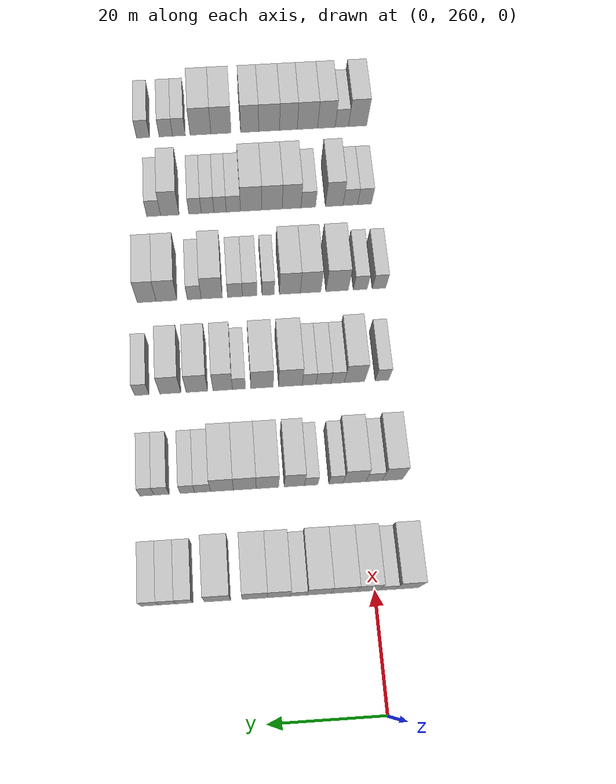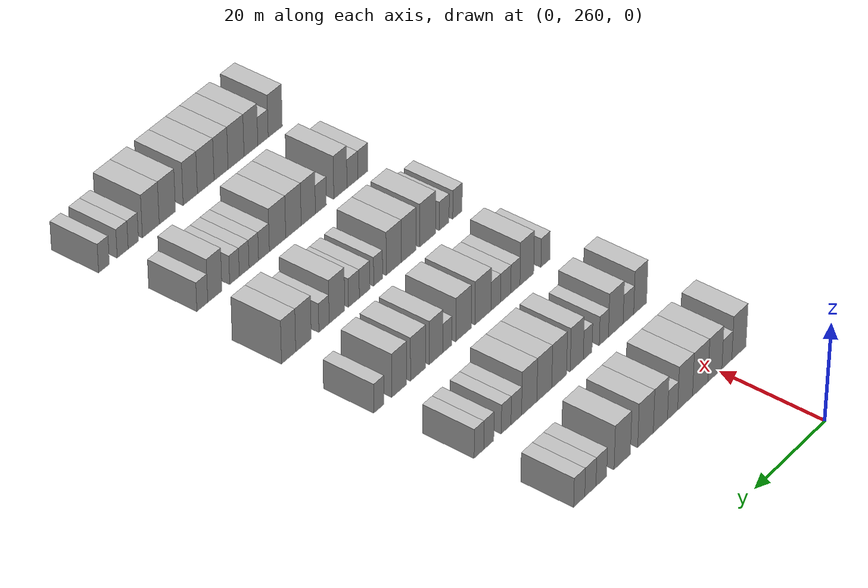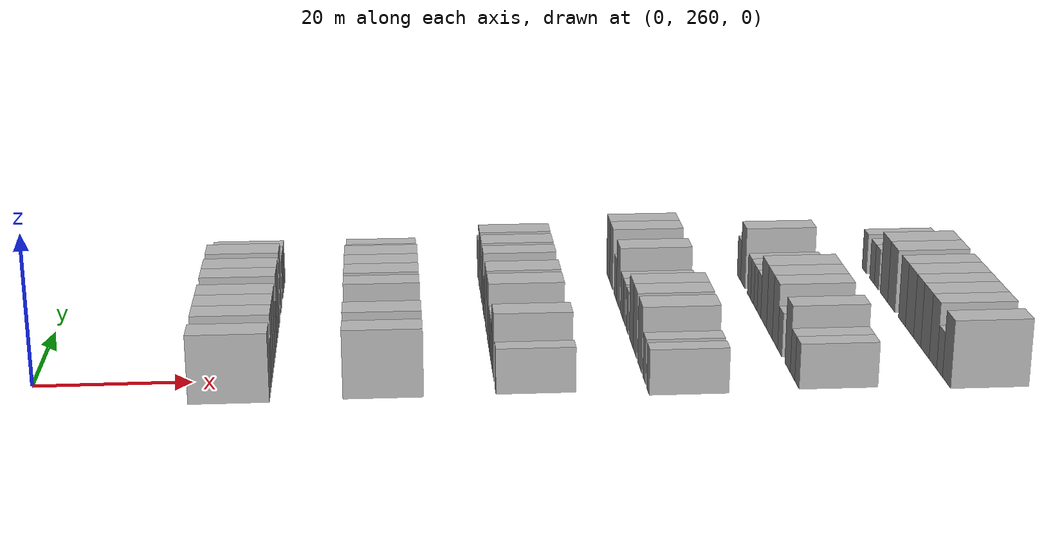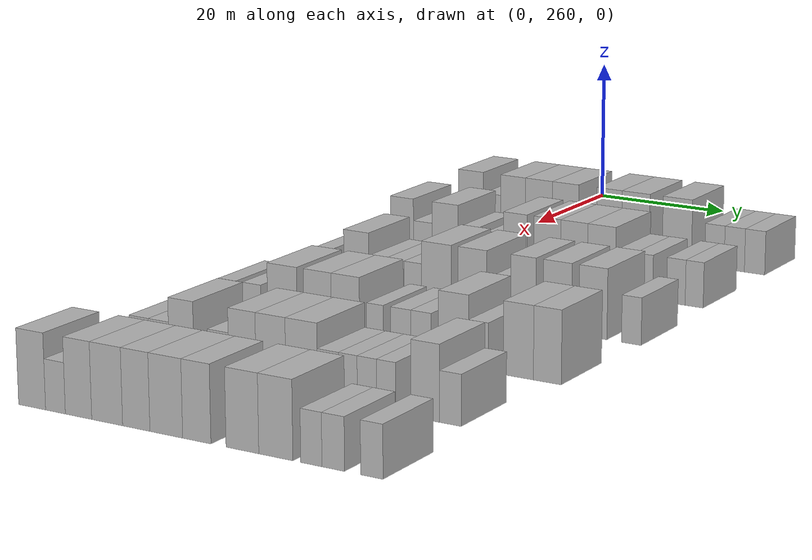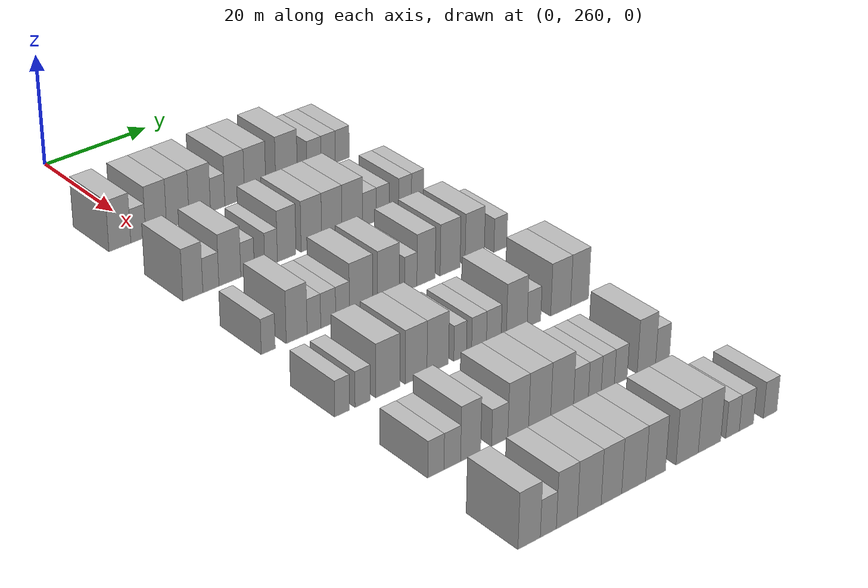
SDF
<sdf version="1.6">
 <world name="default">
  <model name="building_153">
   <static>1</static>
   <pose>25.0000 254.4689 0 0.000000 0.000000 0.000000</pose>
   <link name="link">
    <pose>0 0 4.50 0 0 0</pose>
    <collision name="collision"><geometry><box><size>10.0000 4.0778 9.0000</size></box></geometry></collision>
    <visual name="visual">
     <cast_shadows>0</cast_shadows>
     <geometry><box><size>10.0000 4.0778 9.0000</size></box></geometry>
     <material>
      <script>
       <uri>model://HANNAS_wall/materials/scripts</uri>
       <uri>model://HANNAS_wall/materials/textures</uri>
       <name>vrc/HANNAS_wall</name>
      </script>
     </material>
    </visual>
   </link>
  </model>
  <model name="building_154">
   <static>1</static>
   <pose>25.0000 257.9187 0 0.000000 0.000000 0.000000</pose>
   <link name="link">
    <pose>0 0 3.00 0 0 0</pose>
    <collision name="collision"><geometry><box><size>10.0000 2.8217 6.0000</size></box></geometry></collision>
    <visual name="visual">
     <cast_shadows>0</cast_shadows>
     <geometry><box><size>10.0000 2.8217 6.0000</size></box></geometry>
     <material>
      <script>
       <uri>model://HANNAS_wall/materials/scripts</uri>
       <uri>model://HANNAS_wall/materials/textures</uri>
       <name>vrc/HANNAS_wall</name>
      </script>
     </material>
    </visual>
   </link>
  </model>
  <model name="building_155">
   <static>1</static>
   <pose>25.0000 261.3201 0 0.000000 0.000000 0.000000</pose>
   <link name="link">
    <pose>0 0 4.50 0 0 0</pose>
    <collision name="collision"><geometry><box><size>10.0000 3.9810 9.0000</size></box></geometry></collision>
    <visual name="visual">
     <cast_shadows>0</cast_shadows>
     <geometry><box><size>10.0000 3.9810 9.0000</size></box></geometry>
     <material>
      <script>
       <uri>model://HANNAS_wall/materials/scripts</uri>
       <uri>model://HANNAS_wall/materials/textures</uri>
       <name>vrc/HANNAS_wall</name>
      </script>
     </material>
    </visual>
   </link>
  </model>
  <model name="building_156">
   <static>1</static>
   <pose>25.0000 265.4725 0 0.000000 0.000000 0.000000</pose>
   <link name="link">
    <pose>0 0 4.50 0 0 0</pose>
    <collision name="collision"><geometry><box><size>10.0000 4.3239 9.0000</size></box></geometry></collision>
    <visual name="visual">
     <cast_shadows>0</cast_shadows>
     <geometry><box><size>10.0000 4.3239 9.0000</size></box></geometry>
     <material>
      <script>
       <uri>model://HANNAS_wall/materials/scripts</uri>
       <uri>model://HANNAS_wall/materials/textures</uri>
       <name>vrc/HANNAS_wall</name>
      </script>
     </material>
    </visual>
   </link>
  </model>
  <model name="building_157">
   <static>1</static>
   <pose>25.0000 269.7164 0 0.000000 0.000000 0.000000</pose>
   <link name="link">
    <pose>0 0 4.50 0 0 0</pose>
    <collision name="collision"><geometry><box><size>10.0000 4.1637 9.0000</size></box></geometry></collision>
    <visual name="visual">
     <cast_shadows>0</cast_shadows>
     <geometry><box><size>10.0000 4.1637 9.0000</size></box></geometry>
     <material>
      <script>
       <uri>model://HANNAS_wall/materials/scripts</uri>
       <uri>model://HANNAS_wall/materials/textures</uri>
       <name>vrc/HANNAS_wall</name>
      </script>
     </material>
    </visual>
   </link>
  </model>
  <model name="building_158">
   <static>1</static>
   <pose>25.0000 273.2153 0 0.000000 0.000000 0.000000</pose>
   <link name="link">
    <pose>0 0 3.00 0 0 0</pose>
    <collision name="collision"><geometry><box><size>10.0000 2.8342 6.0000</size></box></geometry></collision>
    <visual name="visual">
     <cast_shadows>0</cast_shadows>
     <geometry><box><size>10.0000 2.8342 6.0000</size></box></geometry>
     <material>
      <script>
       <uri>model://HANNAS_wall/materials/scripts</uri>
       <uri>model://HANNAS_wall/materials/textures</uri>
       <name>vrc/HANNAS_wall</name>
      </script>
     </material>
    </visual>
   </link>
  </model>
  <model name="building_159">
   <static>1</static>
   <pose>25.0000 276.5913 0 0.000000 0.000000 0.000000</pose>
   <link name="link">
    <pose>0 0 4.50 0 0 0</pose>
    <collision name="collision"><geometry><box><size>10.0000 3.9178 9.0000</size></box></geometry></collision>
    <visual name="visual">
     <cast_shadows>0</cast_shadows>
     <geometry><box><size>10.0000 3.9178 9.0000</size></box></geometry>
     <material>
      <script>
       <uri>model://HANNAS_wall/materials/scripts</uri>
       <uri>model://HANNAS_wall/materials/textures</uri>
       <name>vrc/HANNAS_wall</name>
      </script>
     </material>
    </visual>
   </link>
  </model>
  <model name="building_160">
   <static>1</static>
   <pose>25.0000 280.6914 0 0.000000 0.000000 0.000000</pose>
   <link name="link">
    <pose>0 0 4.50 0 0 0</pose>
    <collision name="collision"><geometry><box><size>10.0000 4.2824 9.0000</size></box></geometry></collision>
    <visual name="visual">
     <cast_shadows>0</cast_shadows>
     <geometry><box><size>10.0000 4.2824 9.0000</size></box></geometry>
     <material>
      <script>
       <uri>model://HANNAS_wall/materials/scripts</uri>
       <uri>model://HANNAS_wall/materials/textures</uri>
       <name>vrc/HANNAS_wall</name>
      </script>
     </material>
    </visual>
   </link>
  </model>
  <model name="building_161">
   <static>1</static>
   <pose>25.0000 287.0463 0 0.000000 0.000000 0.000000</pose>
   <link name="link">
    <pose>0 0 4.50 0 0 0</pose>
    <collision name="collision"><geometry><box><size>10.0000 4.4274 9.0000</size></box></geometry></collision>
    <visual name="visual">
     <cast_shadows>0</cast_shadows>
     <geometry><box><size>10.0000 4.4274 9.0000</size></box></geometry>
     <material>
      <script>
       <uri>model://HANNAS_wall/materials/scripts</uri>
       <uri>model://HANNAS_wall/materials/textures</uri>
       <name>vrc/HANNAS_wall</name>
      </script>
     </material>
    </visual>
   </link>
  </model>
  <model name="building_162">
   <static>1</static>
   <pose>25.0000 292.7095 0 0.000000 0.000000 0.000000</pose>
   <link name="link">
    <pose>0 0 3.00 0 0 0</pose>
    <collision name="collision"><geometry><box><size>10.0000 2.8991 6.0000</size></box></geometry></collision>
    <visual name="visual">
     <cast_shadows>0</cast_shadows>
     <geometry><box><size>10.0000 2.8991 6.0000</size></box></geometry>
     <material>
      <script>
       <uri>model://HANNAS_wall/materials/scripts</uri>
       <uri>model://HANNAS_wall/materials/textures</uri>
       <name>vrc/HANNAS_wall</name>
      </script>
     </material>
    </visual>
   </link>
  </model>
  <model name="building_163">
   <static>1</static>
   <pose>25.0000 295.6560 0 0.000000 0.000000 0.000000</pose>
   <link name="link">
    <pose>0 0 3.00 0 0 0</pose>
    <collision name="collision"><geometry><box><size>10.0000 2.9939 6.0000</size></box></geometry></collision>
    <visual name="visual">
     <cast_shadows>0</cast_shadows>
     <geometry><box><size>10.0000 2.9939 6.0000</size></box></geometry>
     <material>
      <script>
       <uri>model://HANNAS_wall/materials/scripts</uri>
       <uri>model://HANNAS_wall/materials/textures</uri>
       <name>vrc/HANNAS_wall</name>
      </script>
     </material>
    </visual>
   </link>
  </model>
  <model name="building_164">
   <static>1</static>
   <pose>25.0000 298.6412 0 0.000000 0.000000 0.000000</pose>
   <link name="link">
    <pose>0 0 3.00 0 0 0</pose>
    <collision name="collision"><geometry><box><size>10.0000 2.9764 6.0000</size></box></geometry></collision>
    <visual name="visual">
     <cast_shadows>0</cast_shadows>
     <geometry><box><size>10.0000 2.9764 6.0000</size></box></geometry>
     <material>
      <script>
       <uri>model://HANNAS_wall/materials/scripts</uri>
       <uri>model://HANNAS_wall/materials/textures</uri>
       <name>vrc/HANNAS_wall</name>
      </script>
     </material>
    </visual>
   </link>
  </model>
  <model name="building_320">
   <static>1</static>
   <pose>44.0000 254.7056 0 0.000000 0.000000 0.000000</pose>
   <link name="link">
    <pose>0 0 4.50 0 0 0</pose>
    <collision name="collision"><geometry><box><size>10.0000 3.6808 9.0000</size></box></geometry></collision>
    <visual name="visual">
     <cast_shadows>0</cast_shadows>
     <geometry><box><size>10.0000 3.6808 9.0000</size></box></geometry>
     <material>
      <script>
       <uri>model://HANNAS_wall/materials/scripts</uri>
       <uri>model://HANNAS_wall/materials/textures</uri>
       <name>vrc/HANNAS_wall</name>
      </script>
     </material>
    </visual>
   </link>
  </model>
  <model name="building_321">
   <static>1</static>
   <pose>44.0000 258.0361 0 0.000000 0.000000 0.000000</pose>
   <link name="link">
    <pose>0 0 3.00 0 0 0</pose>
    <collision name="collision"><geometry><box><size>10.0000 2.9803 6.0000</size></box></geometry></collision>
    <visual name="visual">
     <cast_shadows>0</cast_shadows>
     <geometry><box><size>10.0000 2.9803 6.0000</size></box></geometry>
     <material>
      <script>
       <uri>model://HANNAS_wall/materials/scripts</uri>
       <uri>model://HANNAS_wall/materials/textures</uri>
       <name>vrc/HANNAS_wall</name>
      </script>
     </material>
    </visual>
   </link>
  </model>
  <model name="building_322">
   <static>1</static>
   <pose>44.0000 261.5831 0 0.000000 0.000000 0.000000</pose>
   <link name="link">
    <pose>0 0 4.50 0 0 0</pose>
    <collision name="collision"><geometry><box><size>10.0000 4.1137 9.0000</size></box></geometry></collision>
    <visual name="visual">
     <cast_shadows>0</cast_shadows>
     <geometry><box><size>10.0000 4.1137 9.0000</size></box></geometry>
     <material>
      <script>
       <uri>model://HANNAS_wall/materials/scripts</uri>
       <uri>model://HANNAS_wall/materials/textures</uri>
       <name>vrc/HANNAS_wall</name>
      </script>
     </material>
    </visual>
   </link>
  </model>
  <model name="building_323">
   <static>1</static>
   <pose>44.0000 264.9212 0 0.000000 0.000000 0.000000</pose>
   <link name="link">
    <pose>0 0 3.00 0 0 0</pose>
    <collision name="collision"><geometry><box><size>10.0000 2.5624 6.0000</size></box></geometry></collision>
    <visual name="visual">
     <cast_shadows>0</cast_shadows>
     <geometry><box><size>10.0000 2.5624 6.0000</size></box></geometry>
     <material>
      <script>
       <uri>model://HANNAS_wall/materials/scripts</uri>
       <uri>model://HANNAS_wall/materials/textures</uri>
       <name>vrc/HANNAS_wall</name>
      </script>
     </material>
    </visual>
   </link>
  </model>
  <model name="building_324">
   <static>1</static>
   <pose>44.0000 269.4164 0 0.000000 0.000000 0.000000</pose>
   <link name="link">
    <pose>0 0 3.00 0 0 0</pose>
    <collision name="collision"><geometry><box><size>10.0000 2.4282 6.0000</size></box></geometry></collision>
    <visual name="visual">
     <cast_shadows>0</cast_shadows>
     <geometry><box><size>10.0000 2.4282 6.0000</size></box></geometry>
     <material>
      <script>
       <uri>model://HANNAS_wall/materials/scripts</uri>
       <uri>model://HANNAS_wall/materials/textures</uri>
       <name>vrc/HANNAS_wall</name>
      </script>
     </material>
    </visual>
   </link>
  </model>
  <model name="building_325">
   <static>1</static>
   <pose>44.0000 272.4348 0 0.000000 0.000000 0.000000</pose>
   <link name="link">
    <pose>0 0 4.50 0 0 0</pose>
    <collision name="collision"><geometry><box><size>10.0000 3.6086 9.0000</size></box></geometry></collision>
    <visual name="visual">
     <cast_shadows>0</cast_shadows>
     <geometry><box><size>10.0000 3.6086 9.0000</size></box></geometry>
     <material>
      <script>
       <uri>model://HANNAS_wall/materials/scripts</uri>
       <uri>model://HANNAS_wall/materials/textures</uri>
       <name>vrc/HANNAS_wall</name>
      </script>
     </material>
    </visual>
   </link>
  </model>
  <model name="building_326">
   <static>1</static>
   <pose>44.0000 277.2609 0 0.000000 0.000000 0.000000</pose>
   <link name="link">
    <pose>0 0 4.50 0 0 0</pose>
    <collision name="collision"><geometry><box><size>10.0000 4.0436 9.0000</size></box></geometry></collision>
    <visual name="visual">
     <cast_shadows>0</cast_shadows>
     <geometry><box><size>10.0000 4.0436 9.0000</size></box></geometry>
     <material>
      <script>
       <uri>model://HANNAS_wall/materials/scripts</uri>
       <uri>model://HANNAS_wall/materials/textures</uri>
       <name>vrc/HANNAS_wall</name>
      </script>
     </material>
    </visual>
   </link>
  </model>
  <model name="building_327">
   <static>1</static>
   <pose>44.0000 281.3010 0 0.000000 0.000000 0.000000</pose>
   <link name="link">
    <pose>0 0 4.50 0 0 0</pose>
    <collision name="collision"><geometry><box><size>10.0000 4.0364 9.0000</size></box></geometry></collision>
    <visual name="visual">
     <cast_shadows>0</cast_shadows>
     <geometry><box><size>10.0000 4.0364 9.0000</size></box></geometry>
     <material>
      <script>
       <uri>model://HANNAS_wall/materials/scripts</uri>
       <uri>model://HANNAS_wall/materials/textures</uri>
       <name>vrc/HANNAS_wall</name>
      </script>
     </material>
    </visual>
   </link>
  </model>
  <model name="building_328">
   <static>1</static>
   <pose>44.0000 285.3831 0 0.000000 0.000000 0.000000</pose>
   <link name="link">
    <pose>0 0 4.50 0 0 0</pose>
    <collision name="collision"><geometry><box><size>10.0000 4.1279 9.0000</size></box></geometry></collision>
    <visual name="visual">
     <cast_shadows>0</cast_shadows>
     <geometry><box><size>10.0000 4.1279 9.0000</size></box></geometry>
     <material>
      <script>
       <uri>model://HANNAS_wall/materials/scripts</uri>
       <uri>model://HANNAS_wall/materials/textures</uri>
       <name>vrc/HANNAS_wall</name>
      </script>
     </material>
    </visual>
   </link>
  </model>
  <model name="building_329">
   <static>1</static>
   <pose>44.0000 288.8710 0 0.000000 0.000000 0.000000</pose>
   <link name="link">
    <pose>0 0 3.00 0 0 0</pose>
    <collision name="collision"><geometry><box><size>10.0000 2.8478 6.0000</size></box></geometry></collision>
    <visual name="visual">
     <cast_shadows>0</cast_shadows>
     <geometry><box><size>10.0000 2.8478 6.0000</size></box></geometry>
     <material>
      <script>
       <uri>model://HANNAS_wall/materials/scripts</uri>
       <uri>model://HANNAS_wall/materials/textures</uri>
       <name>vrc/HANNAS_wall</name>
      </script>
     </material>
    </visual>
   </link>
  </model>
  <model name="building_330">
   <static>1</static>
   <pose>44.0000 291.5858 0 0.000000 0.000000 0.000000</pose>
   <link name="link">
    <pose>0 0 3.00 0 0 0</pose>
    <collision name="collision"><geometry><box><size>10.0000 2.5817 6.0000</size></box></geometry></collision>
    <visual name="visual">
     <cast_shadows>0</cast_shadows>
     <geometry><box><size>10.0000 2.5817 6.0000</size></box></geometry>
     <material>
      <script>
       <uri>model://HANNAS_wall/materials/scripts</uri>
       <uri>model://HANNAS_wall/materials/textures</uri>
       <name>vrc/HANNAS_wall</name>
      </script>
     </material>
    </visual>
   </link>
  </model>
  <model name="building_331">
   <static>1</static>
   <pose>44.0000 296.2044 0 0.000000 0.000000 0.000000</pose>
   <link name="link">
    <pose>0 0 3.00 0 0 0</pose>
    <collision name="collision"><geometry><box><size>10.0000 2.6555 6.0000</size></box></geometry></collision>
    <visual name="visual">
     <cast_shadows>0</cast_shadows>
     <geometry><box><size>10.0000 2.6555 6.0000</size></box></geometry>
     <material>
      <script>
       <uri>model://HANNAS_wall/materials/scripts</uri>
       <uri>model://HANNAS_wall/materials/textures</uri>
       <name>vrc/HANNAS_wall</name>
      </script>
     </material>
    </visual>
   </link>
  </model>
  <model name="building_332">
   <static>1</static>
   <pose>44.0000 298.8072 0 0.000000 0.000000 0.000000</pose>
   <link name="link">
    <pose>0 0 3.00 0 0 0</pose>
    <collision name="collision"><geometry><box><size>10.0000 2.5501 6.0000</size></box></geometry></collision>
    <visual name="visual">
     <cast_shadows>0</cast_shadows>
     <geometry><box><size>10.0000 2.5501 6.0000</size></box></geometry>
     <material>
      <script>
       <uri>model://HANNAS_wall/materials/scripts</uri>
       <uri>model://HANNAS_wall/materials/textures</uri>
       <name>vrc/HANNAS_wall</name>
      </script>
     </material>
    </visual>
   </link>
  </model>
  <model name="building_496">
   <static>1</static>
   <pose>63.0000 254.4241 0 0.000000 0.000000 0.000000</pose>
   <link name="link">
    <pose>0 0 3.00 0 0 0</pose>
    <collision name="collision"><geometry><box><size>10.0000 2.5324 6.0000</size></box></geometry></collision>
    <visual name="visual">
     <cast_shadows>0</cast_shadows>
     <geometry><box><size>10.0000 2.5324 6.0000</size></box></geometry>
     <material>
      <script>
       <uri>model://HANNAS_wall/materials/scripts</uri>
       <uri>model://HANNAS_wall/materials/textures</uri>
       <name>vrc/HANNAS_wall</name>
      </script>
     </material>
    </visual>
   </link>
  </model>
  <model name="building_497">
   <static>1</static>
   <pose>63.0000 259.6049 0 0.000000 0.000000 0.000000</pose>
   <link name="link">
    <pose>0 0 4.50 0 0 0</pose>
    <collision name="collision"><geometry><box><size>10.0000 3.8292 9.0000</size></box></geometry></collision>
    <visual name="visual">
     <cast_shadows>0</cast_shadows>
     <geometry><box><size>10.0000 3.8292 9.0000</size></box></geometry>
     <material>
      <script>
       <uri>model://HANNAS_wall/materials/scripts</uri>
       <uri>model://HANNAS_wall/materials/textures</uri>
       <name>vrc/HANNAS_wall</name>
      </script>
     </material>
    </visual>
   </link>
  </model>
  <model name="building_498">
   <static>1</static>
   <pose>63.0000 262.7938 0 0.000000 0.000000 0.000000</pose>
   <link name="link">
    <pose>0 0 3.00 0 0 0</pose>
    <collision name="collision"><geometry><box><size>10.0000 2.5487 6.0000</size></box></geometry></collision>
    <visual name="visual">
     <cast_shadows>0</cast_shadows>
     <geometry><box><size>10.0000 2.5487 6.0000</size></box></geometry>
     <material>
      <script>
       <uri>model://HANNAS_wall/materials/scripts</uri>
       <uri>model://HANNAS_wall/materials/textures</uri>
       <name>vrc/HANNAS_wall</name>
      </script>
     </material>
    </visual>
   </link>
  </model>
  <model name="building_499">
   <static>1</static>
   <pose>63.0000 265.4704 0 0.000000 0.000000 0.000000</pose>
   <link name="link">
    <pose>0 0 3.00 0 0 0</pose>
    <collision name="collision"><geometry><box><size>10.0000 2.8044 6.0000</size></box></geometry></collision>
    <visual name="visual">
     <cast_shadows>0</cast_shadows>
     <geometry><box><size>10.0000 2.8044 6.0000</size></box></geometry>
     <material>
      <script>
       <uri>model://HANNAS_wall/materials/scripts</uri>
       <uri>model://HANNAS_wall/materials/textures</uri>
       <name>vrc/HANNAS_wall</name>
      </script>
     </material>
    </visual>
   </link>
  </model>
  <model name="building_500">
   <static>1</static>
   <pose>63.0000 268.1704 0 0.000000 0.000000 0.000000</pose>
   <link name="link">
    <pose>0 0 3.00 0 0 0</pose>
    <collision name="collision"><geometry><box><size>10.0000 2.5957 6.0000</size></box></geometry></collision>
    <visual name="visual">
     <cast_shadows>0</cast_shadows>
     <geometry><box><size>10.0000 2.5957 6.0000</size></box></geometry>
     <material>
      <script>
       <uri>model://HANNAS_wall/materials/scripts</uri>
       <uri>model://HANNAS_wall/materials/textures</uri>
       <name>vrc/HANNAS_wall</name>
      </script>
     </material>
    </visual>
   </link>
  </model>
  <model name="building_501">
   <static>1</static>
   <pose>63.0000 271.6797 0 0.000000 0.000000 0.000000</pose>
   <link name="link">
    <pose>0 0 4.50 0 0 0</pose>
    <collision name="collision"><geometry><box><size>10.0000 4.4229 9.0000</size></box></geometry></collision>
    <visual name="visual">
     <cast_shadows>0</cast_shadows>
     <geometry><box><size>10.0000 4.4229 9.0000</size></box></geometry>
     <material>
      <script>
       <uri>model://HANNAS_wall/materials/scripts</uri>
       <uri>model://HANNAS_wall/materials/textures</uri>
       <name>vrc/HANNAS_wall</name>
      </script>
     </material>
    </visual>
   </link>
  </model>
  <model name="building_502">
   <static>1</static>
   <pose>63.0000 276.9984 0 0.000000 0.000000 0.000000</pose>
   <link name="link">
    <pose>0 0 4.50 0 0 0</pose>
    <collision name="collision"><geometry><box><size>10.0000 4.2145 9.0000</size></box></geometry></collision>
    <visual name="visual">
     <cast_shadows>0</cast_shadows>
     <geometry><box><size>10.0000 4.2145 9.0000</size></box></geometry>
     <material>
      <script>
       <uri>model://HANNAS_wall/materials/scripts</uri>
       <uri>model://HANNAS_wall/materials/textures</uri>
       <name>vrc/HANNAS_wall</name>
      </script>
     </material>
    </visual>
   </link>
  </model>
  <model name="building_503">
   <static>1</static>
   <pose>63.0000 281.3273 0 0.000000 0.000000 0.000000</pose>
   <link name="link">
    <pose>0 0 3.00 0 0 0</pose>
    <collision name="collision"><geometry><box><size>10.0000 2.4432 6.0000</size></box></geometry></collision>
    <visual name="visual">
     <cast_shadows>0</cast_shadows>
     <geometry><box><size>10.0000 2.4432 6.0000</size></box></geometry>
     <material>
      <script>
       <uri>model://HANNAS_wall/materials/scripts</uri>
       <uri>model://HANNAS_wall/materials/textures</uri>
       <name>vrc/HANNAS_wall</name>
      </script>
     </material>
    </visual>
   </link>
  </model>
  <model name="building_504">
   <static>1</static>
   <pose>63.0000 284.3616 0 0.000000 0.000000 0.000000</pose>
   <link name="link">
    <pose>0 0 4.50 0 0 0</pose>
    <collision name="collision"><geometry><box><size>10.0000 3.6255 9.0000</size></box></geometry></collision>
    <visual name="visual">
     <cast_shadows>0</cast_shadows>
     <geometry><box><size>10.0000 3.6255 9.0000</size></box></geometry>
     <material>
      <script>
       <uri>model://HANNAS_wall/materials/scripts</uri>
       <uri>model://HANNAS_wall/materials/textures</uri>
       <name>vrc/HANNAS_wall</name>
      </script>
     </material>
    </visual>
   </link>
  </model>
  <model name="building_505">
   <static>1</static>
   <pose>63.0000 289.1882 0 0.000000 0.000000 0.000000</pose>
   <link name="link">
    <pose>0 0 4.50 0 0 0</pose>
    <collision name="collision"><geometry><box><size>10.0000 4.0276 9.0000</size></box></geometry></collision>
    <visual name="visual">
     <cast_shadows>0</cast_shadows>
     <geometry><box><size>10.0000 4.0276 9.0000</size></box></geometry>
     <material>
      <script>
       <uri>model://HANNAS_wall/materials/scripts</uri>
       <uri>model://HANNAS_wall/materials/textures</uri>
       <name>vrc/HANNAS_wall</name>
      </script>
     </material>
    </visual>
   </link>
  </model>
  <model name="building_506">
   <static>1</static>
   <pose>63.0000 294.1654 0 0.000000 0.000000 0.000000</pose>
   <link name="link">
    <pose>0 0 4.50 0 0 0</pose>
    <collision name="collision"><geometry><box><size>10.0000 3.9268 9.0000</size></box></geometry></collision>
    <visual name="visual">
     <cast_shadows>0</cast_shadows>
     <geometry><box><size>10.0000 3.9268 9.0000</size></box></geometry>
     <material>
      <script>
       <uri>model://HANNAS_wall/materials/scripts</uri>
       <uri>model://HANNAS_wall/materials/textures</uri>
       <name>vrc/HANNAS_wall</name>
      </script>
     </material>
    </visual>
   </link>
  </model>
  <model name="building_507">
   <static>1</static>
   <pose>63.0000 299.4735 0 0.000000 0.000000 0.000000</pose>
   <link name="link">
    <pose>0 0 3.00 0 0 0</pose>
    <collision name="collision"><geometry><box><size>10.0000 2.6894 6.0000</size></box></geometry></collision>
    <visual name="visual">
     <cast_shadows>0</cast_shadows>
     <geometry><box><size>10.0000 2.6894 6.0000</size></box></geometry>
     <material>
      <script>
       <uri>model://HANNAS_wall/materials/scripts</uri>
       <uri>model://HANNAS_wall/materials/textures</uri>
       <name>vrc/HANNAS_wall</name>
      </script>
     </material>
    </visual>
   </link>
  </model>
  <model name="building_669">
   <static>1</static>
   <pose>82.0000 252.8216 0 0.000000 0.000000 0.000000</pose>
   <link name="link">
    <pose>0 0 3.00 0 0 0</pose>
    <collision name="collision"><geometry><box><size>10.0000 2.6441 6.0000</size></box></geometry></collision>
    <visual name="visual">
     <cast_shadows>0</cast_shadows>
     <geometry><box><size>10.0000 2.6441 6.0000</size></box></geometry>
     <material>
      <script>
       <uri>model://HANNAS_wall/materials/scripts</uri>
       <uri>model://HANNAS_wall/materials/textures</uri>
       <name>vrc/HANNAS_wall</name>
      </script>
     </material>
    </visual>
   </link>
  </model>
  <model name="building_670">
   <static>1</static>
   <pose>82.0000 256.5113 0 0.000000 0.000000 0.000000</pose>
   <link name="link">
    <pose>0 0 3.00 0 0 0</pose>
    <collision name="collision"><geometry><box><size>10.0000 2.7354 6.0000</size></box></geometry></collision>
    <visual name="visual">
     <cast_shadows>0</cast_shadows>
     <geometry><box><size>10.0000 2.7354 6.0000</size></box></geometry>
     <material>
      <script>
       <uri>model://HANNAS_wall/materials/scripts</uri>
       <uri>model://HANNAS_wall/materials/textures</uri>
       <name>vrc/HANNAS_wall</name>
      </script>
     </material>
    </visual>
   </link>
  </model>
  <model name="building_671">
   <static>1</static>
   <pose>82.0000 261.0689 0 0.000000 0.000000 0.000000</pose>
   <link name="link">
    <pose>0 0 4.50 0 0 0</pose>
    <collision name="collision"><geometry><box><size>10.0000 4.3798 9.0000</size></box></geometry></collision>
    <visual name="visual">
     <cast_shadows>0</cast_shadows>
     <geometry><box><size>10.0000 4.3798 9.0000</size></box></geometry>
     <material>
      <script>
       <uri>model://HANNAS_wall/materials/scripts</uri>
       <uri>model://HANNAS_wall/materials/textures</uri>
       <name>vrc/HANNAS_wall</name>
      </script>
     </material>
    </visual>
   </link>
  </model>
  <model name="building_672">
   <static>1</static>
   <pose>82.0000 266.2804 0 0.000000 0.000000 0.000000</pose>
   <link name="link">
    <pose>0 0 4.50 0 0 0</pose>
    <collision name="collision"><geometry><box><size>10.0000 4.0433 9.0000</size></box></geometry></collision>
    <visual name="visual">
     <cast_shadows>0</cast_shadows>
     <geometry><box><size>10.0000 4.0433 9.0000</size></box></geometry>
     <material>
      <script>
       <uri>model://HANNAS_wall/materials/scripts</uri>
       <uri>model://HANNAS_wall/materials/textures</uri>
       <name>vrc/HANNAS_wall</name>
      </script>
     </material>
    </visual>
   </link>
  </model>
  <model name="building_673">
   <static>1</static>
   <pose>82.0000 270.3343 0 0.000000 0.000000 0.000000</pose>
   <link name="link">
    <pose>0 0 4.50 0 0 0</pose>
    <collision name="collision"><geometry><box><size>10.0000 4.0644 9.0000</size></box></geometry></collision>
    <visual name="visual">
     <cast_shadows>0</cast_shadows>
     <geometry><box><size>10.0000 4.0644 9.0000</size></box></geometry>
     <material>
      <script>
       <uri>model://HANNAS_wall/materials/scripts</uri>
       <uri>model://HANNAS_wall/materials/textures</uri>
       <name>vrc/HANNAS_wall</name>
      </script>
     </material>
    </visual>
   </link>
  </model>
  <model name="building_674">
   <static>1</static>
   <pose>82.0000 274.5666 0 0.000000 0.000000 0.000000</pose>
   <link name="link">
    <pose>0 0 3.00 0 0 0</pose>
    <collision name="collision"><geometry><box><size>10.0000 2.4001 6.0000</size></box></geometry></collision>
    <visual name="visual">
     <cast_shadows>0</cast_shadows>
     <geometry><box><size>10.0000 2.4001 6.0000</size></box></geometry>
     <material>
      <script>
       <uri>model://HANNAS_wall/materials/scripts</uri>
       <uri>model://HANNAS_wall/materials/textures</uri>
       <name>vrc/HANNAS_wall</name>
      </script>
     </material>
    </visual>
   </link>
  </model>
  <model name="building_675">
   <static>1</static>
   <pose>82.0000 278.1936 0 0.000000 0.000000 0.000000</pose>
   <link name="link">
    <pose>0 0 3.00 0 0 0</pose>
    <collision name="collision"><geometry><box><size>10.0000 2.8539 6.0000</size></box></geometry></collision>
    <visual name="visual">
     <cast_shadows>0</cast_shadows>
     <geometry><box><size>10.0000 2.8539 6.0000</size></box></geometry>
     <material>
      <script>
       <uri>model://HANNAS_wall/materials/scripts</uri>
       <uri>model://HANNAS_wall/materials/textures</uri>
       <name>vrc/HANNAS_wall</name>
      </script>
     </material>
    </visual>
   </link>
  </model>
  <model name="building_676">
   <static>1</static>
   <pose>82.0000 281.0628 0 0.000000 0.000000 0.000000</pose>
   <link name="link">
    <pose>0 0 3.00 0 0 0</pose>
    <collision name="collision"><geometry><box><size>10.0000 2.8845 6.0000</size></box></geometry></collision>
    <visual name="visual">
     <cast_shadows>0</cast_shadows>
     <geometry><box><size>10.0000 2.8845 6.0000</size></box></geometry>
     <material>
      <script>
       <uri>model://HANNAS_wall/materials/scripts</uri>
       <uri>model://HANNAS_wall/materials/textures</uri>
       <name>vrc/HANNAS_wall</name>
      </script>
     </material>
    </visual>
   </link>
  </model>
  <model name="building_677">
   <static>1</static>
   <pose>82.0000 285.5686 0 0.000000 0.000000 0.000000</pose>
   <link name="link">
    <pose>0 0 4.50 0 0 0</pose>
    <collision name="collision"><geometry><box><size>10.0000 4.1270 9.0000</size></box></geometry></collision>
    <visual name="visual">
     <cast_shadows>0</cast_shadows>
     <geometry><box><size>10.0000 4.1270 9.0000</size></box></geometry>
     <material>
      <script>
       <uri>model://HANNAS_wall/materials/scripts</uri>
       <uri>model://HANNAS_wall/materials/textures</uri>
       <name>vrc/HANNAS_wall</name>
      </script>
     </material>
    </visual>
   </link>
  </model>
  <model name="building_678">
   <static>1</static>
   <pose>82.0000 288.9918 0 0.000000 0.000000 0.000000</pose>
   <link name="link">
    <pose>0 0 3.00 0 0 0</pose>
    <collision name="collision"><geometry><box><size>10.0000 2.7194 6.0000</size></box></geometry></collision>
    <visual name="visual">
     <cast_shadows>0</cast_shadows>
     <geometry><box><size>10.0000 2.7194 6.0000</size></box></geometry>
     <material>
      <script>
       <uri>model://HANNAS_wall/materials/scripts</uri>
       <uri>model://HANNAS_wall/materials/textures</uri>
       <name>vrc/HANNAS_wall</name>
      </script>
     </material>
    </visual>
   </link>
  </model>
  <model name="building_679">
   <static>1</static>
   <pose>82.0000 294.3774 0 0.000000 0.000000 0.000000</pose>
   <link name="link">
    <pose>0 0 4.50 0 0 0</pose>
    <collision name="collision"><geometry><box><size>10.0000 4.0517 9.0000</size></box></geometry></collision>
    <visual name="visual">
     <cast_shadows>0</cast_shadows>
     <geometry><box><size>10.0000 4.0517 9.0000</size></box></geometry>
     <material>
      <script>
       <uri>model://HANNAS_wall/materials/scripts</uri>
       <uri>model://HANNAS_wall/materials/textures</uri>
       <name>vrc/HANNAS_wall</name>
      </script>
     </material>
    </visual>
   </link>
  </model>
  <model name="building_680">
   <static>1</static>
   <pose>82.0000 298.2485 0 0.000000 0.000000 0.000000</pose>
   <link name="link">
    <pose>0 0 4.50 0 0 0</pose>
    <collision name="collision"><geometry><box><size>10.0000 3.6905 9.0000</size></box></geometry></collision>
    <visual name="visual">
     <cast_shadows>0</cast_shadows>
     <geometry><box><size>10.0000 3.6905 9.0000</size></box></geometry>
     <material>
      <script>
       <uri>model://HANNAS_wall/materials/scripts</uri>
       <uri>model://HANNAS_wall/materials/textures</uri>
       <name>vrc/HANNAS_wall</name>
      </script>
     </material>
    </visual>
   </link>
  </model>
  <model name="building_841">
   <static>1</static>
   <pose>101.0000 253.6285 0 0.000000 0.000000 0.000000</pose>
   <link name="link">
    <pose>0 0 3.00 0 0 0</pose>
    <collision name="collision"><geometry><box><size>10.0000 2.8488 6.0000</size></box></geometry></collision>
    <visual name="visual">
     <cast_shadows>0</cast_shadows>
     <geometry><box><size>10.0000 2.8488 6.0000</size></box></geometry>
     <material>
      <script>
       <uri>model://HANNAS_wall/materials/scripts</uri>
       <uri>model://HANNAS_wall/materials/textures</uri>
       <name>vrc/HANNAS_wall</name>
      </script>
     </material>
    </visual>
   </link>
  </model>
  <model name="building_842">
   <static>1</static>
   <pose>101.0000 256.5346 0 0.000000 0.000000 0.000000</pose>
   <link name="link">
    <pose>0 0 3.00 0 0 0</pose>
    <collision name="collision"><geometry><box><size>10.0000 2.9632 6.0000</size></box></geometry></collision>
    <visual name="visual">
     <cast_shadows>0</cast_shadows>
     <geometry><box><size>10.0000 2.9632 6.0000</size></box></geometry>
     <material>
      <script>
       <uri>model://HANNAS_wall/materials/scripts</uri>
       <uri>model://HANNAS_wall/materials/textures</uri>
       <name>vrc/HANNAS_wall</name>
      </script>
     </material>
    </visual>
   </link>
  </model>
  <model name="building_843">
   <static>1</static>
   <pose>101.0000 259.8180 0 0.000000 0.000000 0.000000</pose>
   <link name="link">
    <pose>0 0 4.50 0 0 0</pose>
    <collision name="collision"><geometry><box><size>10.0000 3.6036 9.0000</size></box></geometry></collision>
    <visual name="visual">
     <cast_shadows>0</cast_shadows>
     <geometry><box><size>10.0000 3.6036 9.0000</size></box></geometry>
     <material>
      <script>
       <uri>model://HANNAS_wall/materials/scripts</uri>
       <uri>model://HANNAS_wall/materials/textures</uri>
       <name>vrc/HANNAS_wall</name>
      </script>
     </material>
    </visual>
   </link>
  </model>
  <model name="building_844">
   <static>1</static>
   <pose>101.0000 265.1122 0 0.000000 0.000000 0.000000</pose>
   <link name="link">
    <pose>0 0 3.00 0 0 0</pose>
    <collision name="collision"><geometry><box><size>10.0000 2.9849 6.0000</size></box></geometry></collision>
    <visual name="visual">
     <cast_shadows>0</cast_shadows>
     <geometry><box><size>10.0000 2.9849 6.0000</size></box></geometry>
     <material>
      <script>
       <uri>model://HANNAS_wall/materials/scripts</uri>
       <uri>model://HANNAS_wall/materials/textures</uri>
       <name>vrc/HANNAS_wall</name>
      </script>
     </material>
    </visual>
   </link>
  </model>
  <model name="building_845">
   <static>1</static>
   <pose>101.0000 268.5261 0 0.000000 0.000000 0.000000</pose>
   <link name="link">
    <pose>0 0 4.50 0 0 0</pose>
    <collision name="collision"><geometry><box><size>10.0000 3.8428 9.0000</size></box></geometry></collision>
    <visual name="visual">
     <cast_shadows>0</cast_shadows>
     <geometry><box><size>10.0000 3.8428 9.0000</size></box></geometry>
     <material>
      <script>
       <uri>model://HANNAS_wall/materials/scripts</uri>
       <uri>model://HANNAS_wall/materials/textures</uri>
       <name>vrc/HANNAS_wall</name>
      </script>
     </material>
    </visual>
   </link>
  </model>
  <model name="building_846">
   <static>1</static>
   <pose>101.0000 272.5226 0 0.000000 0.000000 0.000000</pose>
   <link name="link">
    <pose>0 0 4.50 0 0 0</pose>
    <collision name="collision"><geometry><box><size>10.0000 4.1502 9.0000</size></box></geometry></collision>
    <visual name="visual">
     <cast_shadows>0</cast_shadows>
     <geometry><box><size>10.0000 4.1502 9.0000</size></box></geometry>
     <material>
      <script>
       <uri>model://HANNAS_wall/materials/scripts</uri>
       <uri>model://HANNAS_wall/materials/textures</uri>
       <name>vrc/HANNAS_wall</name>
      </script>
     </material>
    </visual>
   </link>
  </model>
  <model name="building_847">
   <static>1</static>
   <pose>101.0000 276.7745 0 0.000000 0.000000 0.000000</pose>
   <link name="link">
    <pose>0 0 4.50 0 0 0</pose>
    <collision name="collision"><geometry><box><size>10.0000 4.3536 9.0000</size></box></geometry></collision>
    <visual name="visual">
     <cast_shadows>0</cast_shadows>
     <geometry><box><size>10.0000 4.3536 9.0000</size></box></geometry>
     <material>
      <script>
       <uri>model://HANNAS_wall/materials/scripts</uri>
       <uri>model://HANNAS_wall/materials/textures</uri>
       <name>vrc/HANNAS_wall</name>
      </script>
     </material>
    </visual>
   </link>
  </model>
  <model name="building_848">
   <static>1</static>
   <pose>101.0000 280.3809 0 0.000000 0.000000 0.000000</pose>
   <link name="link">
    <pose>0 0 3.00 0 0 0</pose>
    <collision name="collision"><geometry><box><size>10.0000 2.8593 6.0000</size></box></geometry></collision>
    <visual name="visual">
     <cast_shadows>0</cast_shadows>
     <geometry><box><size>10.0000 2.8593 6.0000</size></box></geometry>
     <material>
      <script>
       <uri>model://HANNAS_wall/materials/scripts</uri>
       <uri>model://HANNAS_wall/materials/textures</uri>
       <name>vrc/HANNAS_wall</name>
      </script>
     </material>
    </visual>
   </link>
  </model>
  <model name="building_849">
   <static>1</static>
   <pose>101.0000 283.0658 0 0.000000 0.000000 0.000000</pose>
   <link name="link">
    <pose>0 0 3.00 0 0 0</pose>
    <collision name="collision"><geometry><box><size>10.0000 2.5104 6.0000</size></box></geometry></collision>
    <visual name="visual">
     <cast_shadows>0</cast_shadows>
     <geometry><box><size>10.0000 2.5104 6.0000</size></box></geometry>
     <material>
      <script>
       <uri>model://HANNAS_wall/materials/scripts</uri>
       <uri>model://HANNAS_wall/materials/textures</uri>
       <name>vrc/HANNAS_wall</name>
      </script>
     </material>
    </visual>
   </link>
  </model>
  <model name="building_850">
   <static>1</static>
   <pose>101.0000 285.6036 0 0.000000 0.000000 0.000000</pose>
   <link name="link">
    <pose>0 0 3.00 0 0 0</pose>
    <collision name="collision"><geometry><box><size>10.0000 2.5653 6.0000</size></box></geometry></collision>
    <visual name="visual">
     <cast_shadows>0</cast_shadows>
     <geometry><box><size>10.0000 2.5653 6.0000</size></box></geometry>
     <material>
      <script>
       <uri>model://HANNAS_wall/materials/scripts</uri>
       <uri>model://HANNAS_wall/materials/textures</uri>
       <name>vrc/HANNAS_wall</name>
      </script>
     </material>
    </visual>
   </link>
  </model>
  <model name="building_851">
   <static>1</static>
   <pose>101.0000 288.1473 0 0.000000 0.000000 0.000000</pose>
   <link name="link">
    <pose>0 0 3.00 0 0 0</pose>
    <collision name="collision"><geometry><box><size>10.0000 2.5221 6.0000</size></box></geometry></collision>
    <visual name="visual">
     <cast_shadows>0</cast_shadows>
     <geometry><box><size>10.0000 2.5221 6.0000</size></box></geometry>
     <material>
      <script>
       <uri>model://HANNAS_wall/materials/scripts</uri>
       <uri>model://HANNAS_wall/materials/textures</uri>
       <name>vrc/HANNAS_wall</name>
      </script>
     </material>
    </visual>
   </link>
  </model>
  <model name="building_852">
   <static>1</static>
   <pose>101.0000 293.2612 0 0.000000 0.000000 0.000000</pose>
   <link name="link">
    <pose>0 0 4.50 0 0 0</pose>
    <collision name="collision"><geometry><box><size>10.0000 3.7057 9.0000</size></box></geometry></collision>
    <visual name="visual">
     <cast_shadows>0</cast_shadows>
     <geometry><box><size>10.0000 3.7057 9.0000</size></box></geometry>
     <material>
      <script>
       <uri>model://HANNAS_wall/materials/scripts</uri>
       <uri>model://HANNAS_wall/materials/textures</uri>
       <name>vrc/HANNAS_wall</name>
      </script>
     </material>
    </visual>
   </link>
  </model>
  <model name="building_853">
   <static>1</static>
   <pose>101.0000 296.5173 0 0.000000 0.000000 0.000000</pose>
   <link name="link">
    <pose>0 0 3.00 0 0 0</pose>
    <collision name="collision"><geometry><box><size>10.0000 2.8066 6.0000</size></box></geometry></collision>
    <visual name="visual">
     <cast_shadows>0</cast_shadows>
     <geometry><box><size>10.0000 2.8066 6.0000</size></box></geometry>
     <material>
      <script>
       <uri>model://HANNAS_wall/materials/scripts</uri>
       <uri>model://HANNAS_wall/materials/textures</uri>
       <name>vrc/HANNAS_wall</name>
      </script>
     </material>
    </visual>
   </link>
  </model>
  <model name="building_1018">
   <static>1</static>
   <pose>120.0000 253.0640 0 0.000000 0.000000 0.000000</pose>
   <link name="link">
    <pose>0 0 4.50 0 0 0</pose>
    <collision name="collision"><geometry><box><size>10.0000 3.8914 9.0000</size></box></geometry></collision>
    <visual name="visual">
     <cast_shadows>0</cast_shadows>
     <geometry><box><size>10.0000 3.8914 9.0000</size></box></geometry>
     <material>
      <script>
       <uri>model://HANNAS_wall/materials/scripts</uri>
       <uri>model://HANNAS_wall/materials/textures</uri>
       <name>vrc/HANNAS_wall</name>
      </script>
     </material>
    </visual>
   </link>
  </model>
  <model name="building_1019">
   <static>1</static>
   <pose>120.0000 256.4216 0 0.000000 0.000000 0.000000</pose>
   <link name="link">
    <pose>0 0 3.00 0 0 0</pose>
    <collision name="collision"><geometry><box><size>10.0000 2.8239 6.0000</size></box></geometry></collision>
    <visual name="visual">
     <cast_shadows>0</cast_shadows>
     <geometry><box><size>10.0000 2.8239 6.0000</size></box></geometry>
     <material>
      <script>
       <uri>model://HANNAS_wall/materials/scripts</uri>
       <uri>model://HANNAS_wall/materials/textures</uri>
       <name>vrc/HANNAS_wall</name>
      </script>
     </material>
    </visual>
   </link>
  </model>
  <model name="building_1020">
   <static>1</static>
   <pose>120.0000 259.7012 0 0.000000 0.000000 0.000000</pose>
   <link name="link">
    <pose>0 0 4.50 0 0 0</pose>
    <collision name="collision"><geometry><box><size>10.0000 3.7352 9.0000</size></box></geometry></collision>
    <visual name="visual">
     <cast_shadows>0</cast_shadows>
     <geometry><box><size>10.0000 3.7352 9.0000</size></box></geometry>
     <material>
      <script>
       <uri>model://HANNAS_wall/materials/scripts</uri>
       <uri>model://HANNAS_wall/materials/textures</uri>
       <name>vrc/HANNAS_wall</name>
      </script>
     </material>
    </visual>
   </link>
  </model>
  <model name="building_1021">
   <static>1</static>
   <pose>120.0000 263.7229 0 0.000000 0.000000 0.000000</pose>
   <link name="link">
    <pose>0 0 4.50 0 0 0</pose>
    <collision name="collision"><geometry><box><size>10.0000 4.3083 9.0000</size></box></geometry></collision>
    <visual name="visual">
     <cast_shadows>0</cast_shadows>
     <geometry><box><size>10.0000 4.3083 9.0000</size></box></geometry>
     <material>
      <script>
       <uri>model://HANNAS_wall/materials/scripts</uri>
       <uri>model://HANNAS_wall/materials/textures</uri>
       <name>vrc/HANNAS_wall</name>
      </script>
     </material>
    </visual>
   </link>
  </model>
  <model name="building_1022">
   <static>1</static>
   <pose>120.0000 267.7555 0 0.000000 0.000000 0.000000</pose>
   <link name="link">
    <pose>0 0 4.50 0 0 0</pose>
    <collision name="collision"><geometry><box><size>10.0000 3.7569 9.0000</size></box></geometry></collision>
    <visual name="visual">
     <cast_shadows>0</cast_shadows>
     <geometry><box><size>10.0000 3.7569 9.0000</size></box></geometry>
     <material>
      <script>
       <uri>model://HANNAS_wall/materials/scripts</uri>
       <uri>model://HANNAS_wall/materials/textures</uri>
       <name>vrc/HANNAS_wall</name>
      </script>
     </material>
    </visual>
   </link>
  </model>
  <model name="building_1023">
   <static>1</static>
   <pose>120.0000 271.8538 0 0.000000 0.000000 0.000000</pose>
   <link name="link">
    <pose>0 0 4.50 0 0 0</pose>
    <collision name="collision"><geometry><box><size>10.0000 4.4396 9.0000</size></box></geometry></collision>
    <visual name="visual">
     <cast_shadows>0</cast_shadows>
     <geometry><box><size>10.0000 4.4396 9.0000</size></box></geometry>
     <material>
      <script>
       <uri>model://HANNAS_wall/materials/scripts</uri>
       <uri>model://HANNAS_wall/materials/textures</uri>
       <name>vrc/HANNAS_wall</name>
      </script>
     </material>
    </visual>
   </link>
  </model>
  <model name="building_1024">
   <static>1</static>
   <pose>120.0000 275.9606 0 0.000000 0.000000 0.000000</pose>
   <link name="link">
    <pose>0 0 4.50 0 0 0</pose>
    <collision name="collision"><geometry><box><size>10.0000 3.7741 9.0000</size></box></geometry></collision>
    <visual name="visual">
     <cast_shadows>0</cast_shadows>
     <geometry><box><size>10.0000 3.7741 9.0000</size></box></geometry>
     <material>
      <script>
       <uri>model://HANNAS_wall/materials/scripts</uri>
       <uri>model://HANNAS_wall/materials/textures</uri>
       <name>vrc/HANNAS_wall</name>
      </script>
     </material>
    </visual>
   </link>
  </model>
  <model name="building_1025">
   <static>1</static>
   <pose>120.0000 281.9837 0 0.000000 0.000000 0.000000</pose>
   <link name="link">
    <pose>0 0 4.50 0 0 0</pose>
    <collision name="collision"><geometry><box><size>10.0000 4.2722 9.0000</size></box></geometry></collision>
    <visual name="visual">
     <cast_shadows>0</cast_shadows>
     <geometry><box><size>10.0000 4.2722 9.0000</size></box></geometry>
     <material>
      <script>
       <uri>model://HANNAS_wall/materials/scripts</uri>
       <uri>model://HANNAS_wall/materials/textures</uri>
       <name>vrc/HANNAS_wall</name>
      </script>
     </material>
    </visual>
   </link>
  </model>
  <model name="building_1026">
   <static>1</static>
   <pose>120.0000 286.3149 0 0.000000 0.000000 0.000000</pose>
   <link name="link">
    <pose>0 0 4.50 0 0 0</pose>
    <collision name="collision"><geometry><box><size>10.0000 4.3902 9.0000</size></box></geometry></collision>
    <visual name="visual">
     <cast_shadows>0</cast_shadows>
     <geometry><box><size>10.0000 4.3902 9.0000</size></box></geometry>
     <material>
      <script>
       <uri>model://HANNAS_wall/materials/scripts</uri>
       <uri>model://HANNAS_wall/materials/textures</uri>
       <name>vrc/HANNAS_wall</name>
      </script>
     </material>
    </visual>
   </link>
  </model>
  <model name="building_1027">
   <static>1</static>
   <pose>120.0000 290.8506 0 0.000000 0.000000 0.000000</pose>
   <link name="link">
    <pose>0 0 3.00 0 0 0</pose>
    <collision name="collision"><geometry><box><size>10.0000 2.6812 6.0000</size></box></geometry></collision>
    <visual name="visual">
     <cast_shadows>0</cast_shadows>
     <geometry><box><size>10.0000 2.6812 6.0000</size></box></geometry>
     <material>
      <script>
       <uri>model://HANNAS_wall/materials/scripts</uri>
       <uri>model://HANNAS_wall/materials/textures</uri>
       <name>vrc/HANNAS_wall</name>
      </script>
     </material>
    </visual>
   </link>
  </model>
  <model name="building_1028">
   <static>1</static>
   <pose>120.0000 293.6070 0 0.000000 0.000000 0.000000</pose>
   <link name="link">
    <pose>0 0 3.00 0 0 0</pose>
    <collision name="collision"><geometry><box><size>10.0000 2.8315 6.0000</size></box></geometry></collision>
    <visual name="visual">
     <cast_shadows>0</cast_shadows>
     <geometry><box><size>10.0000 2.8315 6.0000</size></box></geometry>
     <material>
      <script>
       <uri>model://HANNAS_wall/materials/scripts</uri>
       <uri>model://HANNAS_wall/materials/textures</uri>
       <name>vrc/HANNAS_wall</name>
      </script>
     </material>
    </visual>
   </link>
  </model>
  <model name="building_1029">
   <static>1</static>
   <pose>120.0000 298.3997 0 0.000000 0.000000 0.000000</pose>
   <link name="link">
    <pose>0 0 3.00 0 0 0</pose>
    <collision name="collision"><geometry><box><size>10.0000 2.7540 6.0000</size></box></geometry></collision>
    <visual name="visual">
     <cast_shadows>0</cast_shadows>
     <geometry><box><size>10.0000 2.7540 6.0000</size></box></geometry>
     <material>
      <script>
       <uri>model://HANNAS_wall/materials/scripts</uri>
       <uri>model://HANNAS_wall/materials/textures</uri>
       <name>vrc/HANNAS_wall</name>
      </script>
     </material>
    </visual>
   </link>
  </model>
 </world>
</sdf>
